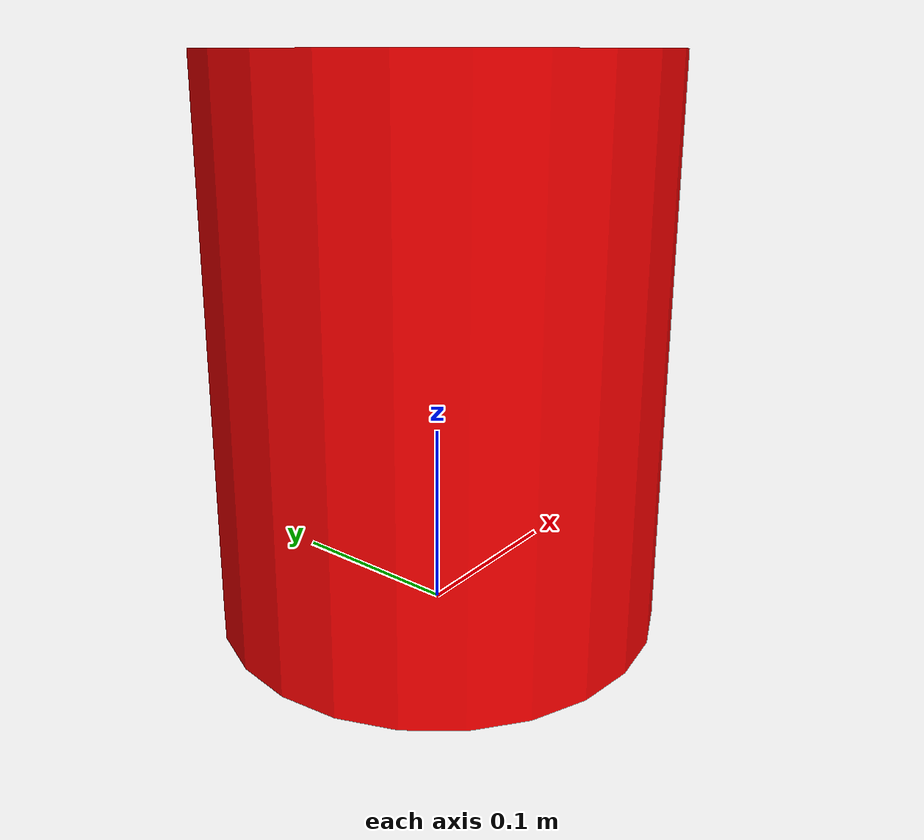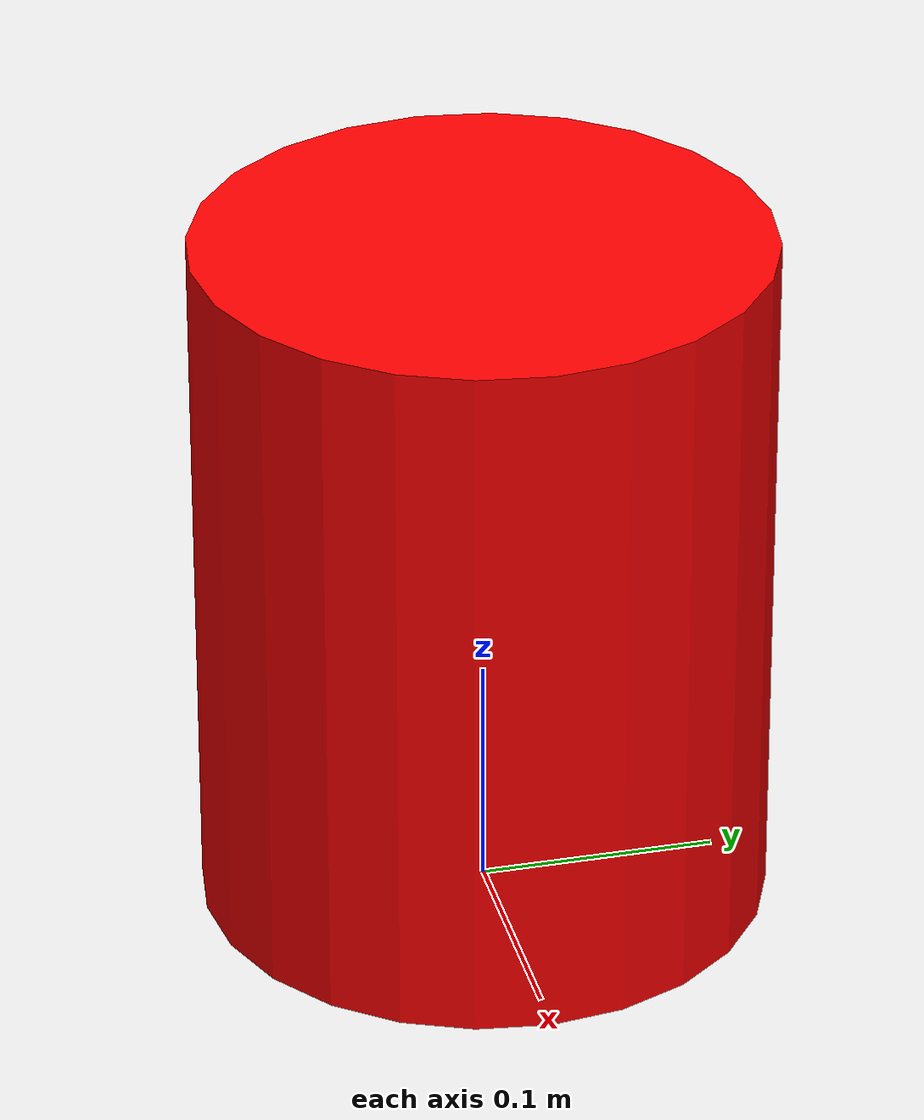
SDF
<?xml version="1.0"?>
<sdf version="1.6">
  <model name="goal_marker">
    <static>false</static>

    <link name="link">
      <gravity>false</gravity>
      <kinematic>true</kinematic>

      <inertial>
        <mass>0.01</mass>
        <inertia>
          <ixx>1e-6</ixx><iyy>1e-6</iyy><izz>1e-6</izz>
          <ixy>0</ixy><ixz>0</ixz><iyz>0</iyz>
        </inertia>
      </inertial>

      <!-- No collision: visual only -->
      <visual name="visual">
        <geometry>
          <cylinder>
            <radius>0.12</radius>
            <length>0.30</length>
          </cylinder>
        </geometry>

        <pose>0 0 0.15 0 0 0</pose>

        <material>
          <ambient>1 0 0 1</ambient>
          <diffuse>1 0 0 1</diffuse>
          <specular>0.1 0.1 0.1 1</specular>
        </material>
      </visual>
    </link>
  </model>
</sdf>
